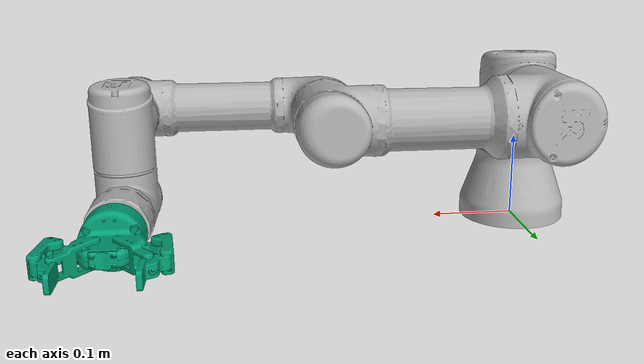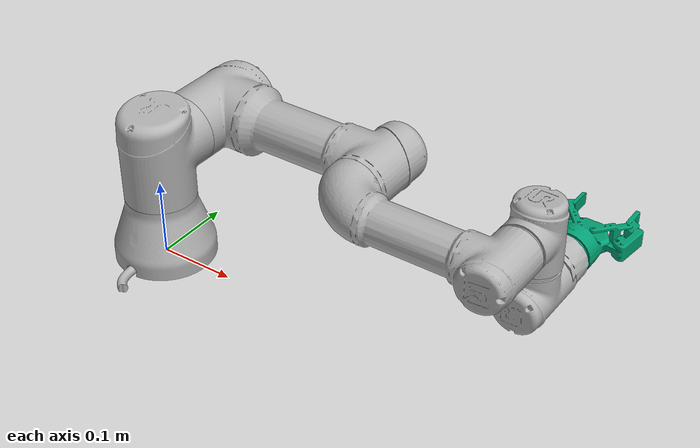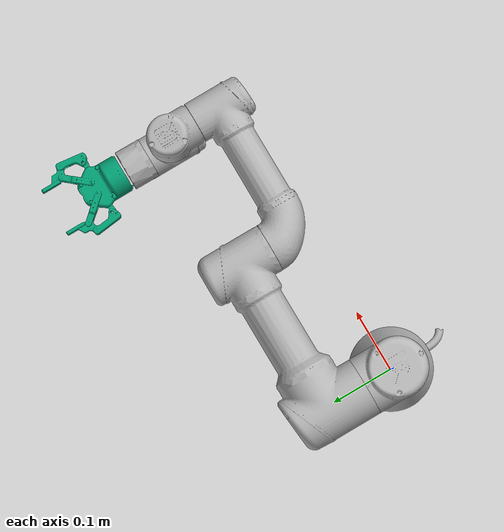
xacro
<?xml version="1.0" encoding="utf-8"?>
<!-- |    This document was autogenerated by xacro from ur3_robot.urdf.xacro           | -->
<!-- |    EDITING THIS FILE BY HAND IS NOT RECOMMENDED                                 | -->
<!-- |    This document was autogenerated by xacro from ur3_robot.urdf.xacro           | -->
<!-- |    EDITING THIS FILE BY HAND IS NOT RECOMMENDED                                 | -->
<!-- |    This document was autogenerated by xacro from ur3_robot.urdf.xacro           | -->
<!-- |    EDITING THIS FILE BY HAND IS NOT RECOMMENDED                                 | -->
<robot name="ur3">
  <gazebo>
    <plugin filename="libgazebo_ros_control.so" name="ros_control">
    </plugin>
  </gazebo>
  <!--
  Author: Felix Messmer
-->
  <!-- measured from model -->
  <link name="base_link">
    <visual>
      <geometry>
        <mesh filename="package://ur_description/meshes/ur3/visual/base.dae"/>
      </geometry>
      <material name="LightGrey">
        <color rgba="0.7 0.7 0.7 1.0"/>
      </material>
    </visual>
    <collision>
      <geometry>
        <mesh filename="package://ur_description/meshes/ur3/collision/base.stl"/>
      </geometry>
    </collision>
    <inertial>
      <mass value="2.0"/>
      <origin rpy="0 0 0" xyz="0.0 0.0 0.0"/>
      <inertia ixx="0.0030531654454" ixy="0.0" ixz="0.0" iyy="0.0030531654454" iyz="0.0" izz="0.005625"/>
    </inertial>
  </link>
  <joint name="shoulder_pan_joint" type="revolute">
    <parent link="base_link"/>
    <child link="shoulder_link"/>
    <origin rpy="0.0 0.0 0.0" xyz="0.0 0.0 0.1519"/>
    <axis xyz="0 0 1"/>
    <limit effort="330.0" lower="-6.28318530718" upper="6.28318530718" velocity="2.16"/>
    <dynamics damping="0.0" friction="0.0"/>
  </joint>
  <link name="shoulder_link">
    <visual>
      <geometry>
        <mesh filename="package://ur_description/meshes/ur3/visual/shoulder.dae"/>
      </geometry>
      <material name="LightGrey">
        <color rgba="0.7 0.7 0.7 1.0"/>
      </material>
    </visual>
    <collision>
      <geometry>
        <mesh filename="package://ur_description/meshes/ur3/collision/shoulder.stl"/>
      </geometry>
    </collision>
    <inertial>
      <mass value="2.0"/>
      <origin rpy="0 0 0" xyz="0.0 0.0 0.0"/>
      <inertia ixx="0.0080931634294" ixy="0.0" ixz="0.0" iyy="0.0080931634294" iyz="0.0" izz="0.005625"/>
    </inertial>
  </link>
  <joint name="shoulder_lift_joint" type="revolute">
    <parent link="shoulder_link"/>
    <child link="upper_arm_link"/>
    <origin rpy="0.0 1.57079632679 0.0" xyz="0.0 0.1198 0.0"/>
    <axis xyz="0 1 0"/>
    <limit effort="330.0" lower="-6.28318530718" upper="6.28318530718" velocity="2.16"/>
    <dynamics damping="0.0" friction="0.0"/>
  </joint>
  <link name="upper_arm_link">
    <visual>
      <geometry>
        <mesh filename="package://ur_description/meshes/ur3/visual/upperarm.dae"/>
      </geometry>
      <material name="LightGrey">
        <color rgba="0.7 0.7 0.7 1.0"/>
      </material>
    </visual>
    <collision>
      <geometry>
        <mesh filename="package://ur_description/meshes/ur3/collision/upperarm.stl"/>
      </geometry>
    </collision>
    <inertial>
      <mass value="3.42"/>
      <origin rpy="0 0 0" xyz="0.0 0.0 0.121825"/>
      <inertia ixx="0.0217284832211" ixy="0.0" ixz="0.0" iyy="0.0217284832211" iyz="0.0" izz="0.00961875"/>
    </inertial>
  </link>
  <joint name="elbow_joint" type="revolute">
    <parent link="upper_arm_link"/>
    <child link="forearm_link"/>
    <origin rpy="0.0 0.0 0.0" xyz="0.0 -0.0925 0.24365"/>
    <axis xyz="0 1 0"/>
    <limit effort="150.0" lower="-3.14159265359" upper="3.14159265359" velocity="3.15"/>
    <dynamics damping="0.0" friction="0.0"/>
  </joint>
  <link name="forearm_link">
    <visual>
      <geometry>
        <mesh filename="package://ur_description/meshes/ur3/visual/forearm.dae"/>
      </geometry>
      <material name="LightGrey">
        <color rgba="0.7 0.7 0.7 1.0"/>
      </material>
    </visual>
    <collision>
      <geometry>
        <mesh filename="package://ur_description/meshes/ur3/collision/forearm.stl"/>
      </geometry>
    </collision>
    <inertial>
      <mass value="1.26"/>
      <origin rpy="0 0 0" xyz="0.0 0.0 0.106625"/>
      <inertia ixx="0.00654680644378" ixy="0.0" ixz="0.0" iyy="0.00654680644378" iyz="0.0" izz="0.00354375"/>
    </inertial>
  </link>
  <joint name="wrist_1_joint" type="revolute">
    <parent link="forearm_link"/>
    <child link="wrist_1_link"/>
    <origin rpy="0.0 1.57079632679 0.0" xyz="0.0 0.0 0.21325"/>
    <axis xyz="0 1 0"/>
    <limit effort="54.0" lower="-6.28318530718" upper="6.28318530718" velocity="3.2"/>
    <dynamics damping="0.0" friction="0.0"/>
  </joint>
  <link name="wrist_1_link">
    <visual>
      <geometry>
        <mesh filename="package://ur_description/meshes/ur3/visual/wrist1.dae"/>
      </geometry>
      <material name="LightGrey">
        <color rgba="0.7 0.7 0.7 1.0"/>
      </material>
    </visual>
    <collision>
      <geometry>
        <mesh filename="package://ur_description/meshes/ur3/collision/wrist1.stl"/>
      </geometry>
    </collision>
    <inertial>
      <mass value="0.8"/>
      <origin rpy="0 0 0" xyz="0.0 0.08505 0.0"/>
      <inertia ixx="0.002084999166" ixy="0.0" ixz="0.0" iyy="0.002084999166" iyz="0.0" izz="0.00225"/>
    </inertial>
  </link>
  <joint name="wrist_2_joint" type="revolute">
    <parent link="wrist_1_link"/>
    <child link="wrist_2_link"/>
    <origin rpy="0.0 0.0 0.0" xyz="0.0 0.08505 0.0"/>
    <axis xyz="0 0 1"/>
    <limit effort="54.0" lower="-6.28318530718" upper="6.28318530718" velocity="3.2"/>
    <dynamics damping="0.0" friction="0.0"/>
  </joint>
  <link name="wrist_2_link">
    <visual>
      <geometry>
        <mesh filename="package://ur_description/meshes/ur3/visual/wrist2.dae"/>
      </geometry>
      <material name="LightGrey">
        <color rgba="0.7 0.7 0.7 1.0"/>
      </material>
    </visual>
    <collision>
      <geometry>
        <mesh filename="package://ur_description/meshes/ur3/collision/wrist2.stl"/>
      </geometry>
    </collision>
    <inertial>
      <mass value="0.8"/>
      <origin rpy="0 0 0" xyz="0.0 0.0 0.08535"/>
      <inertia ixx="0.002084999166" ixy="0.0" ixz="0.0" iyy="0.002084999166" iyz="0.0" izz="0.00225"/>
    </inertial>
  </link>
  <joint name="wrist_3_joint" type="revolute">
    <parent link="wrist_2_link"/>
    <child link="wrist_3_link"/>
    <origin rpy="0.0 0.0 0.0" xyz="0.0 0.0 0.08535"/>
    <axis xyz="0 1 0"/>
    <limit effort="54.0" lower="-6.28318530718" upper="6.28318530718" velocity="3.2"/>
    <dynamics damping="0.0" friction="0.0"/>
  </joint>
  <link name="wrist_3_link">
    <visual>
      <geometry>
        <mesh filename="package://ur_description/meshes/ur3/visual/wrist3.dae"/>
      </geometry>
      <material name="LightGrey">
        <color rgba="0.7 0.7 0.7 1.0"/>
      </material>
    </visual>
    <collision>
      <geometry>
        <mesh filename="package://ur_description/meshes/ur3/collision/wrist3.stl"/>
      </geometry>
    </collision>
    <inertial>
      <mass value="0.35"/>
      <origin rpy="1.57079632679 0 0" xyz="0.0 0.0619 0.0"/>
      <inertia ixx="0.00013626661216" ixy="0.0" ixz="0.0" iyy="0.00013626661216" iyz="0.0" izz="0.0001792"/>
    </inertial>
  </link>
  <joint name="ee_fixed_joint" type="fixed">
    <parent link="wrist_3_link"/>
    <child link="ee_link"/>
    <origin rpy="0.0 0.0 1.57079632679" xyz="0.0 0.0819 0.0"/>
  </joint>
  <link name="ee_link">
    <collision>
      <geometry>
        <box size="0.01 0.01 0.01"/>
      </geometry>
      <origin rpy="0 0 0" xyz="-0.01 0 0"/>
    </collision>
  </link>
  <transmission name="shoulder_pan_trans">
    <type>transmission_interface/SimpleTransmission</type>
    <joint name="shoulder_pan_joint">
      <hardwareInterface>hardware_interface/PositionJointInterface</hardwareInterface>
    </joint>
    <actuator name="shoulder_pan_motor">
      <mechanicalReduction>1</mechanicalReduction>
    </actuator>
  </transmission>
  <transmission name="shoulder_lift_trans">
    <type>transmission_interface/SimpleTransmission</type>
    <joint name="shoulder_lift_joint">
      <hardwareInterface>hardware_interface/PositionJointInterface</hardwareInterface>
    </joint>
    <actuator name="shoulder_lift_motor">
      <mechanicalReduction>1</mechanicalReduction>
    </actuator>
  </transmission>
  <transmission name="elbow_trans">
    <type>transmission_interface/SimpleTransmission</type>
    <joint name="elbow_joint">
      <hardwareInterface>hardware_interface/PositionJointInterface</hardwareInterface>
    </joint>
    <actuator name="elbow_motor">
      <mechanicalReduction>1</mechanicalReduction>
    </actuator>
  </transmission>
  <transmission name="wrist_1_trans">
    <type>transmission_interface/SimpleTransmission</type>
    <joint name="wrist_1_joint">
      <hardwareInterface>hardware_interface/PositionJointInterface</hardwareInterface>
    </joint>
    <actuator name="wrist_1_motor">
      <mechanicalReduction>1</mechanicalReduction>
    </actuator>
  </transmission>
  <transmission name="wrist_2_trans">
    <type>transmission_interface/SimpleTransmission</type>
    <joint name="wrist_2_joint">
      <hardwareInterface>hardware_interface/PositionJointInterface</hardwareInterface>
    </joint>
    <actuator name="wrist_2_motor">
      <mechanicalReduction>1</mechanicalReduction>
    </actuator>
  </transmission>
  <transmission name="wrist_3_trans">
    <type>transmission_interface/SimpleTransmission</type>
    <joint name="wrist_3_joint">
      <hardwareInterface>hardware_interface/PositionJointInterface</hardwareInterface>
    </joint>
    <actuator name="wrist_3_motor">
      <mechanicalReduction>1</mechanicalReduction>
    </actuator>
  </transmission>
  <gazebo reference="shoulder_link">
    <selfCollide>true</selfCollide>
  </gazebo>
  <gazebo reference="upper_arm_link">
    <selfCollide>true</selfCollide>
  </gazebo>
  <gazebo reference="forearm_link">
    <selfCollide>true</selfCollide>
  </gazebo>
  <gazebo reference="wrist_1_link">
    <selfCollide>true</selfCollide>
  </gazebo>
  <gazebo reference="wrist_3_link">
    <selfCollide>true</selfCollide>
  </gazebo>
  <gazebo reference="wrist_2_link">
    <selfCollide>true</selfCollide>
  </gazebo>
  <gazebo reference="ee_link">
    <selfCollide>true</selfCollide>
  </gazebo>
  <!-- ROS base_link to UR 'Base' Coordinates transform -->
  <link name="base"/>
  <joint name="base_link-base_fixed_joint" type="fixed">
    <!-- NOTE: this rotation is only needed as long as base_link itself is
                 not corrected wrt the real robot (ie: rotated over 180
                 degrees)
      -->
    <origin rpy="0 0 -3.14159265359" xyz="0 0 0"/>
    <parent link="base_link"/>
    <child link="base"/>
  </joint>
  <!-- Frame coincident with all-zeros TCP on UR controller -->
  <link name="tool0"/>
  <joint name="wrist_3_link-tool0_fixed_joint" type="fixed">
    <origin rpy="-1.57079632679 0 0" xyz="0 0.0819 0"/>
    <parent link="wrist_3_link"/>
    <child link="tool0"/>
  </joint>
  <!-- Create a fixed joint with a parameterized name. -->
  <joint name="measurement_tool_joint" type="fixed">
    <!-- The parent link must be read from the robot model it is attached to. -->
    <parent link="tool0"/>
    <child link="measurement_tool"/>
    <!-- Effector position -->
    <origin rpy="1.5708 0 0" xyz="-0.061 0.076 -0.001"/>
  </joint>
  <link name="measurement_tool">
    <visual>
      <geometry>
        <!-- The path to the visual meshes in the package. -->
        <mesh filename="package://ur_description/meshes/ur3/visual/efektor_otwarty.dae" scale = "0.0008 0.0008 0.0008"/>
      </geometry>
    </visual>
    <collision>
      <geometry>
        <!-- The path to the collision meshes in the package. -->
        <mesh filename="package://ur_description/meshes/ur3/collision/efektorotwarty.stl" scale = "0.0008 0.0008 0.0008"/>
      </geometry>
    </collision>
  </link>
  <!-- TCP frame -->
  <joint name="tcp_joint" type="fixed">
    <origin rpy="0 0 0" xyz="0 0 0.116"/>
    <parent link="measurement_tool"/>
    <child link="tcp"/>
  </joint>
  <link name="tcp"/>
  <link name="world"/>
  <joint name="world_joint" type="fixed">
    <parent link="world"/>
    <child link="base_link"/>
    <origin rpy="0.0 0.0 0.0" xyz="0.0 0.0 0.0"/>
  </joint>
</robot>
